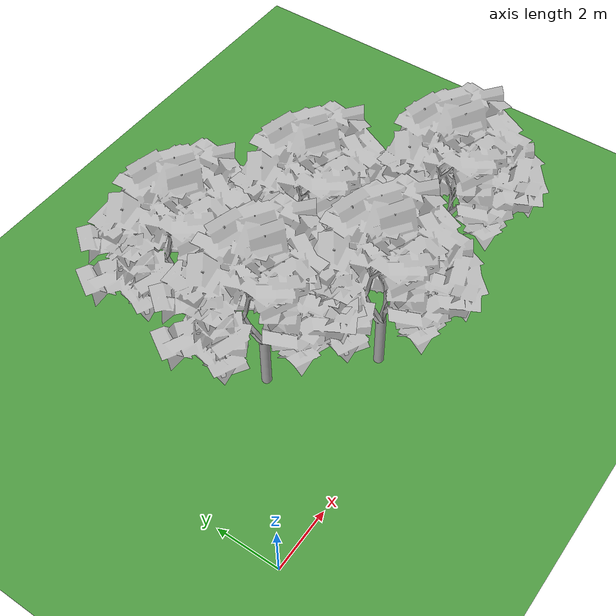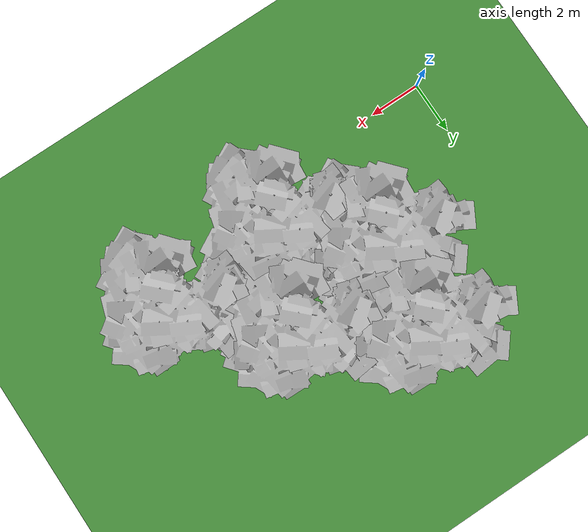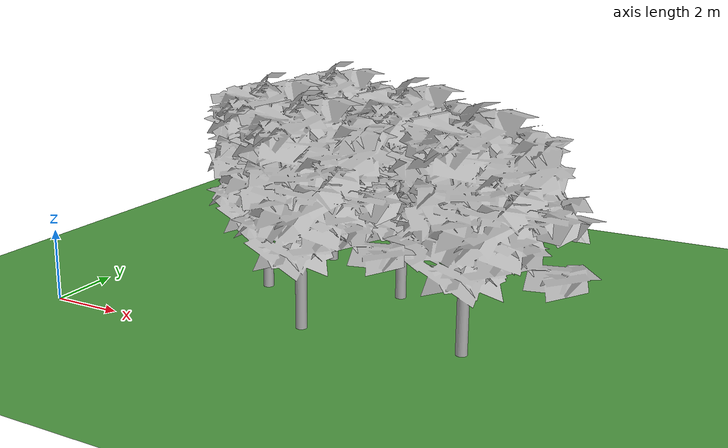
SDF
<?xml version="1.0" ?>
<?xml-model href="http://sdformat.org/schemas/root.xsd" schematypens="http://www.w3.org/2001/XMLSchema"?>
<sdf version="1.5">
  <world name="default">
    <plugin name="mrs_gazebo_static_transform_republisher_plugin" filename="libMrsGazeboCommonResources_StaticTransformRepublisher.so"/>

    <!-- coordinate system {-->
    <spherical_coordinates>
      <surface_model>EARTH_WGS84</surface_model>
      <latitude_deg>47.397743</latitude_deg>
      <longitude_deg>8.545594</longitude_deg>
      <elevation>0.0</elevation>
      <heading_deg>0</heading_deg>
    </spherical_coordinates>

    <physics name="default_physics" default="0" type="ode">
      <gravity>0 0 -9.8066</gravity>
      <ode>
        <solver>
          <type>quick</type>
          <iters>50</iters>
          <sor>1.0</sor>
          <use_dynamic_moi_rescaling>0</use_dynamic_moi_rescaling>
        </solver>
        <constraints>
          <cfm>0</cfm>
          <erp>0.2</erp>
          <contact_max_correcting_vel>1000</contact_max_correcting_vel>
          <contact_surface_layer>0.001</contact_surface_layer>
        </constraints>
      </ode>
      <max_step_size>0.004</max_step_size>
      <real_time_factor>1</real_time_factor>
      <real_time_update_rate>250</real_time_update_rate>
      <magnetic_field>6.0e-06 2.3e-05 -4.2e-05</magnetic_field>
    </physics>

    <scene>
      <shadows>false</shadows>
    </scene>

    <light type="directional" name="sun">
      <cast_shadows>true</cast_shadows>
      <pose>250 250 600 0 0 0</pose>
      <diffuse>0.8 0.8 0.8 1</diffuse>
      <specular>0.2 0.2 0.2 1</specular>
      <attenuation>
        <range>1000</range>
        <constant>0.9</constant>
        <linear>0.01</linear>
        <quadratic>0.001</quadratic>
      </attenuation>
      <direction>0 0 -1</direction>
    </light>

   <model name='world_jean_tree_clone'>
      <static>1</static>
      <link name='link'>
        <collision name='collision'>
          <pose>0 0 1 0 -0 0</pose>
          <geometry>
            <cylinder>
              <radius>0.22</radius>
              <length>2</length>
            </cylinder>
          </geometry>
          <max_contacts>10</max_contacts>
          <surface>
            <contact>
              <ode/>
            </contact>
            <bounce/>
            <friction>
              <torsional>
                <ode/>
              </torsional>
              <ode/>
            </friction>
          </surface>
        </collision>
        <visual name='visual'>
          <geometry>
            <mesh>
              <uri>model://world_jean_tree/meshes/world_jean_tree.obj</uri>
              <scale>1 1 1</scale>
            </mesh>
          </geometry>
        </visual>
        <self_collide>0</self_collide>
        <enable_wind>0</enable_wind>
        <kinematic>0</kinematic>
      </link>
      <pose>4.52183 3.7767 0 0 -0 0</pose>
    </model>
    <model name='world_jean_tree_clone_clone'>
      <static>1</static>
      <link name='link'>
        <collision name='collision'>
          <pose>0 0 1 0 -0 0</pose>
          <geometry>
            <cylinder>
              <radius>0.22</radius>
              <length>2</length>
            </cylinder>
          </geometry>
          <max_contacts>10</max_contacts>
          <surface>
            <contact>
              <ode/>
            </contact>
            <bounce/>
            <friction>
              <torsional>
                <ode/>
              </torsional>
              <ode/>
            </friction>
          </surface>
        </collision>
        <visual name='visual'>
          <geometry>
            <mesh>
              <uri>model://world_jean_tree/meshes/world_jean_tree.obj</uri>
              <scale>1 1 1</scale>
            </mesh>
          </geometry>
        </visual>
        <self_collide>0</self_collide>
        <enable_wind>0</enable_wind>
        <kinematic>0</kinematic>
      </link>
      <pose>6.97302 1.5287 0 0 -0 0</pose>
    </model>
    <model name='world_jean_tree_clone_clone_clone'>
      <static>1</static>
      <link name='link'>
        <collision name='collision'>
          <pose>0 0 1 0 -0 0</pose>
          <geometry>
            <cylinder>
              <radius>0.22</radius>
              <length>2</length>
            </cylinder>
          </geometry>
          <max_contacts>10</max_contacts>
          <surface>
            <contact>
              <ode/>
            </contact>
            <bounce/>
            <friction>
              <torsional>
                <ode/>
              </torsional>
              <ode/>
            </friction>
          </surface>
        </collision>
        <visual name='visual'>
          <geometry>
            <mesh>
              <uri>model://world_jean_tree/meshes/world_jean_tree.obj</uri>
              <scale>1 1 1</scale>
            </mesh>
          </geometry>
        </visual>
        <self_collide>0</self_collide>
        <enable_wind>0</enable_wind>
        <kinematic>0</kinematic>
      </link>
      <pose>8.27403 4.78452 0 0 -0 0</pose>
    </model>
    <model name='world_jean_tree_clone_clone_clone_0'>
      <static>1</static>
      <link name='link'>
        <collision name='collision'>
          <pose>0 0 1 0 -0 0</pose>
          <geometry>
            <cylinder>
              <radius>0.22</radius>
              <length>2</length>
            </cylinder>
          </geometry>
          <max_contacts>10</max_contacts>
          <surface>
            <contact>
              <ode/>
            </contact>
            <bounce/>
            <friction>
              <torsional>
                <ode/>
              </torsional>
              <ode/>
            </friction>
          </surface>
        </collision>
        <visual name='visual'>
          <geometry>
            <mesh>
              <uri>model://world_jean_tree/meshes/world_jean_tree.obj</uri>
              <scale>1 1 1</scale>
            </mesh>
          </geometry>
        </visual>
        <self_collide>0</self_collide>
        <enable_wind>0</enable_wind>
        <kinematic>0</kinematic>
      </link>
      <pose>4.97222 6.81452 0 0 -0 0</pose>
    </model>
    <model name='world_jean_tree_clone_clone_0_clone_1_clone_1'>
      <static>1</static>
      <link name='link'>
        <collision name='collision'>
          <pose>0 0 1 0 -0 0</pose>
          <geometry>
            <cylinder>
              <radius>0.22</radius>
              <length>2</length>
            </cylinder>
          </geometry>
          <max_contacts>10</max_contacts>
          <surface>
            <contact>
              <ode/>
            </contact>
            <bounce/>
            <friction>
              <torsional>
                <ode/>
              </torsional>
              <ode/>
            </friction>
          </surface>
        </collision>
        <visual name='visual'>
          <geometry>
            <mesh>
              <uri>model://world_jean_tree/meshes/world_jean_tree.obj</uri>
              <scale>1 1 1</scale>
            </mesh>
          </geometry>
        </visual>
        <self_collide>0</self_collide>
        <enable_wind>0</enable_wind>
        <kinematic>0</kinematic>
      </link>
      <pose>11.2258 1.96661 0 0 -0 0</pose>
    </model>

    <model name="ground_plane">
      <static>true</static>
      <link name="link">
        <collision name="collision">
          <pose>0 0 0 0 0 0</pose>
          <geometry>
            <plane>
              <normal>0 0 1</normal>
              <size>250 250</size>
            </plane>
          </geometry>
          <surface>
            <friction>
              <ode>
                <mu>1</mu>
                <mu2>1</mu2>
              </ode>
            </friction>
          </surface>
        </collision>
        <visual name="grass">
          <pose>0 0 0 0 0 0</pose>
          <cast_shadows>false</cast_shadows>
          <geometry>
            <plane>
              <normal>0 0 1</normal>
              <size>150 250</size>
            </plane>
          </geometry>
          <material>
            <script>
              <uri>file://media/materials/scripts/Gazebo.material</uri>
              <name>Gazebo/Grass</name>
            </script>
          </material>
        </visual>
      </link>
    </model>
    <gui>
      <camera name="camera">
        <pose>-60 -100 30 0 0.4 0.89</pose>
      </camera>
    </gui>

    <!-- GUI frame synchronization {-->
    <plugin name="mrs_gazebo_rviz_cam_synchronizer" filename="libMrsGazeboCommonResources_RvizCameraSynchronizer.so" >
      <target_frame_id>gazebo_user_camera</target_frame_id>
      <world_origin_frame_id>uav1/gps_origin</world_origin_frame_id>
      <frame_to_follow>uav1::base_link</frame_to_follow>
    </plugin>

  </world>
</sdf>
